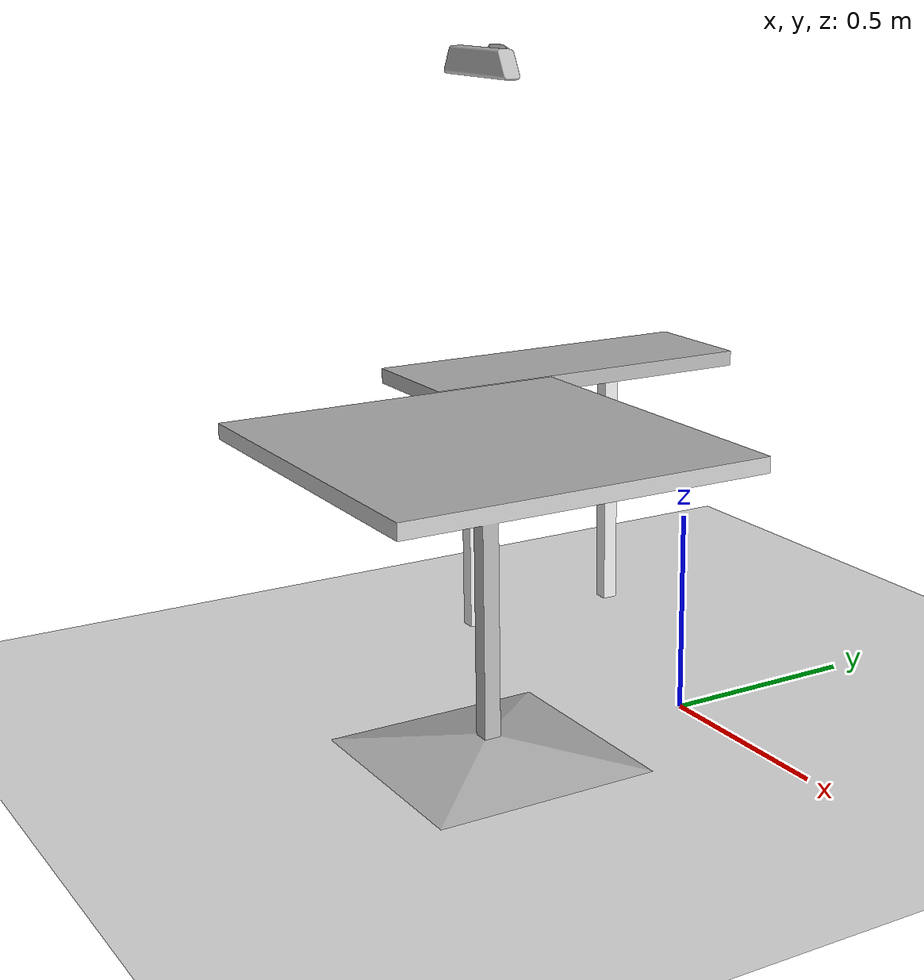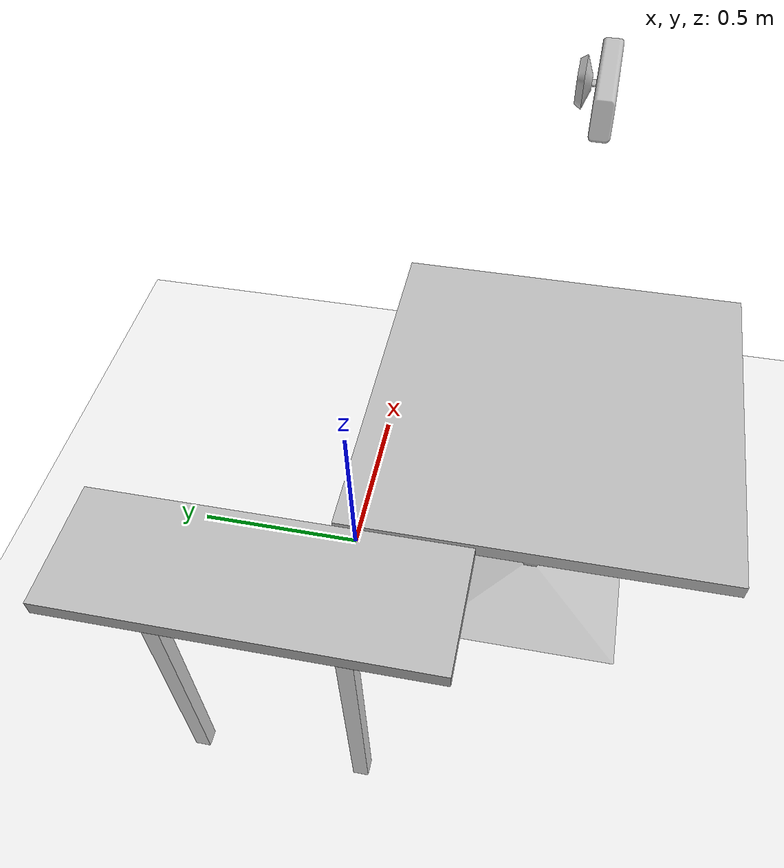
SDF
<sdf version="1.7">
 <world name="base">
  <plugin name="ros_link_attacher_plugin" filename="libgazebo_ros_link_attacher.so"/>
  <gravity>0 0 -9.81</gravity>
  <physics name="default_physics" default="0" type="ode">
   <max_step_size>0.001</max_step_size>
   <real_time_factor>1</real_time_factor>
   <real_time_update_rate>1000</real_time_update_rate>
  </physics>
  <scene><ambient>0.4 0.4 0.4 1</ambient><background>0.7 0.7 0.7 1</background><shadows>1</shadows></scene>
  <light name="sun" type="directional">
   <cast_shadows>0</cast_shadows>
   <pose>0 0 10 0 -0 0</pose>
   <diffuse>0.8 0.8 0.8 1</diffuse>
   <specular>0.2 0.2 0.2 1</specular>
   <attenuation>
    <range>1000</range>
    <constant>0.9</constant>
    <linear>0.01</linear>
    <quadratic>0.001</quadratic>
   </attenuation>
   <direction>-0.5 0.1 -0.9</direction>
   <spot><inner_angle>0</inner_angle><outer_angle>0</outer_angle><falloff>0</falloff></spot>
  </light>
  <model name="ground_plane">
   <static>1</static>
   <link name="link">
    <collision name="collision">
     <geometry><plane><normal>0 0 1</normal><size>100 100</size></plane></geometry>
     <surface>
      <contact><collide_bitmask>65535</collide_bitmask></contact>
      <friction><ode><mu>100</mu><mu2>50</mu2></ode></friction>
     </surface>
    </collision>
    <visual name="visual">
     <cast_shadows>0</cast_shadows>
     <geometry><plane><normal>0 0 1</normal><size>100 100</size></plane></geometry>
     <material>
      <script><uri>file://media/materials/scripts/gazebo.material</uri><name>Gazebo/White</name></script>
     </material>
    </visual>
   </link>
  </model>
  <model name="kinect">
   <pose>0 -0.558 1.58 1.58 1.57079 -0</pose>
   <link name="link">
    <visual name="visual"><geometry><mesh><uri>model://kinect/meshes/kinect.dae</uri></mesh></geometry></visual>
    <sensor name="camera" type="depth">
     <update_rate>20</update_rate>
     <camera>
      <horizontal_fov>1</horizontal_fov>
      <image><width>640</width><height>640</height><format>R8G8B8</format></image>
      <clip><near>0.05</near><far>3</far></clip>
     </camera>
     <plugin name="camera_plugin" filename="libgazebo_ros_openni_kinect.so">
      <baseline>0.2</baseline>
      <alwaysOn>1</alwaysOn>
      <updateRate>0.0</updateRate>
      <cameraName>camera_ir</cameraName>
      <imageTopicName>/camera/color/image_raw</imageTopicName>
      <cameraInfoTopicName>/camera/color/camera_info</cameraInfoTopicName>
      <depthImageTopicName>/camera/depth/image_raw</depthImageTopicName>
      <depthImageCameraInfoTopicName>/camera/depth/camera_info</depthImageCameraInfoTopicName>
      <pointCloudTopicName>/camera/depth/points</pointCloudTopicName>
      <frameName>camera_link</frameName>
      <pointCloudCutoff>0.5</pointCloudCutoff>
      <pointCloudCutoffMax>3.0</pointCloudCutoffMax>
      <distortionK1>0</distortionK1>
      <distortionK2>0</distortionK2>
      <distortionK3>0</distortionK3>
      <distortionT1>0</distortionT1>
      <distortionT2>0</distortionT2>
      <CxPrime>0</CxPrime>
      <Cx>0</Cx>
      <Cy>0</Cy>
      <focalLength>0</focalLength>
      <hackBaseline>0</hackBaseline>
     </plugin>
    </sensor>
   </link>
   <static>1</static>
  </model>
  <magnetic_field>6e-06 2.3e-05 -4.2e-05</magnetic_field>
  <atmosphere type="adiabatic"/>
  <spherical_coordinates>
   <surface_model>EARTH_WGS84</surface_model>
   <latitude_deg>0</latitude_deg>
   <longitude_deg>0</longitude_deg>
   <elevation>0</elevation>
   <heading_deg>0</heading_deg>
  </spherical_coordinates>
  <model name="floor">
   <visual name="visual">
    <material>
     <script>
      <uri>model://floor/materials/scripts</uri>
      <uri>model://floor/materials/textures</uri>
      <name>parquet/Image</name>
     </script>
    </material>
    <pose>5 5 0.011 0 -0 0</pose>
    <cast_shadows>0</cast_shadows>
   </visual>
  </model>
  <model name="cafe_table">
   <link name="link">
    <visual name="visual">
     <geometry><mesh><uri>model://cafe_table/meshes/cafe_table.dae</uri></mesh></geometry>
     <material><shader type="pixel"/></material>
    </visual>
    <collision name="surface">
     <pose>0 0 0.755 0 -0 0</pose>
     <geometry><box><size>0.913 0.913 0.04</size></box></geometry>
     <surface>
      <friction>
       <ode><mu>100</mu><mu2>100</mu2><fdir1>0 0 0</fdir1><slip1>0</slip1><slip2>0</slip2></ode>
       <torsional>
        <coefficient>1</coefficient>
        <patch_radius>0</patch_radius>
        <surface_radius>0</surface_radius>
        <use_patch_radius>1</use_patch_radius>
        <ode><slip>0</slip></ode>
       </torsional>
      </friction>
      <bounce><restitution_coefficient>0</restitution_coefficient><threshold>1e+06</threshold></bounce>
      <contact>
       <collide_without_contact>0</collide_without_contact>
       <collide_without_contact_bitmask>1</collide_without_contact_bitmask>
       <collide_bitmask>1</collide_bitmask>
       <ode>
        <soft_cfm>0</soft_cfm>
        <soft_erp>0.2</soft_erp>
        <kp>1e+13</kp>
        <kd>1</kd>
        <max_vel>0.01</max_vel>
        <min_depth>0</min_depth>
       </ode>
       <bullet>
        <split_impulse>1</split_impulse>
        <split_impulse_penetration_threshold>-0.01</split_impulse_penetration_threshold>
        <soft_cfm>0</soft_cfm>
        <soft_erp>0.2</soft_erp>
        <kp>1e+13</kp>
        <kd>1</kd>
       </bullet>
      </contact>
     </surface>
    </collision>
    <collision name="column">
     <pose>0 0 0.37 0 -0 0</pose>
     <geometry><box><size>0.042 0.042 0.74</size></box></geometry>
     <surface>
      <friction>
       <ode><mu>1</mu><mu2>1</mu2><fdir1>0 0 0</fdir1><slip1>0</slip1><slip2>0</slip2></ode>
       <torsional>
        <coefficient>1</coefficient>
        <patch_radius>0</patch_radius>
        <surface_radius>0</surface_radius>
        <use_patch_radius>1</use_patch_radius>
        <ode><slip>0</slip></ode>
       </torsional>
      </friction>
      <bounce><restitution_coefficient>0</restitution_coefficient><threshold>1e+06</threshold></bounce>
      <contact>
       <collide_without_contact>0</collide_without_contact>
       <collide_without_contact_bitmask>1</collide_without_contact_bitmask>
       <collide_bitmask>1</collide_bitmask>
       <ode>
        <soft_cfm>0</soft_cfm>
        <soft_erp>0.2</soft_erp>
        <kp>1e+13</kp>
        <kd>1</kd>
        <max_vel>0.01</max_vel>
        <min_depth>0</min_depth>
       </ode>
       <bullet>
        <split_impulse>1</split_impulse>
        <split_impulse_penetration_threshold>-0.01</split_impulse_penetration_threshold>
        <soft_cfm>0</soft_cfm>
        <soft_erp>0.2</soft_erp>
        <kp>1e+13</kp>
        <kd>1</kd>
       </bullet>
      </contact>
     </surface>
    </collision>
    <collision name="base">
     <pose>0 0 0.02 0 -0 0</pose>
     <geometry><box><size>0.56 0.56 0.04</size></box></geometry>
     <surface>
      <friction>
       <ode><mu>1</mu><mu2>1</mu2><fdir1>0 0 0</fdir1><slip1>0</slip1><slip2>0</slip2></ode>
       <torsional>
        <coefficient>1</coefficient>
        <patch_radius>0</patch_radius>
        <surface_radius>0</surface_radius>
        <use_patch_radius>1</use_patch_radius>
        <ode><slip>0</slip></ode>
       </torsional>
      </friction>
      <bounce><restitution_coefficient>0</restitution_coefficient><threshold>1e+06</threshold></bounce>
      <contact>
       <collide_without_contact>0</collide_without_contact>
       <collide_without_contact_bitmask>1</collide_without_contact_bitmask>
       <collide_bitmask>1</collide_bitmask>
       <ode>
        <soft_cfm>0</soft_cfm>
        <soft_erp>0.2</soft_erp>
        <kp>1e+13</kp>
        <kd>1</kd>
        <max_vel>0.01</max_vel>
        <min_depth>0</min_depth>
       </ode>
       <bullet>
        <split_impulse>1</split_impulse>
        <split_impulse_penetration_threshold>-0.01</split_impulse_penetration_threshold>
        <soft_cfm>0</soft_cfm>
        <soft_erp>0.2</soft_erp>
        <kp>1e+13</kp>
        <kd>1</kd>
       </bullet>
      </contact>
     </surface>
    </collision>
   </link>
   <static>1</static>
   <pose>0 -0.558 0 0 0 -3.14159</pose>
  </model>
  <model name="end_table">
   <static>1</static>
   <link name="top_plate">
    <pose>0 0 0.755 0 -0 0</pose>
    <collision name="top_plate_collision">
     <geometry><box><size>0.913 0.713 0.04</size></box></geometry>
     <surface><contact><collide_bitmask>1</collide_bitmask></contact></surface>
    </collision>
    <visual name="top_plate_visual">
     <geometry><box><size>0.913 0.313 0.04</size></box></geometry>
     <material>
      <script>
       <uri>model://end_table/materials/scripts</uri>
       <uri>model://end_table/materials/textures</uri>
       <name>grid/Image</name>
      </script>
     </material>
    </visual>
   </link>
   <link name="leg1">
    <pose>0.22 -0.1 0.4 0 -0 0</pose>
    <collision name="leg1_collision"><geometry><box><size>0.04 0.04 0.74</size></box></geometry></collision>
    <visual name="leg1_visual">
     <geometry><box><size>0.04 0.04 0.74</size></box></geometry>
     <material>
      <script><uri>file://media/materials/scripts/gazebo.material</uri><name>Gazebo/White</name></script>
     </material>
    </visual>
   </link>
   <link name="leg2">
    <pose>-0.22 -0.1 0.4 0 -0 0</pose>
    <collision name="leg2_collision"><geometry><box><size>0.04 0.04 0.74</size></box></geometry></collision>
    <visual name="leg2_visual">
     <geometry><box><size>0.04 0.04 0.74</size></box></geometry>
     <material>
      <script><uri>file://media/materials/scripts/gazebo.material</uri><name>Gazebo/White</name></script>
     </material>
    </visual>
   </link>
   <pose>-0.621398 0.02786 0 0 0 -1.5707</pose>
  </model>
 </world>
</sdf>
